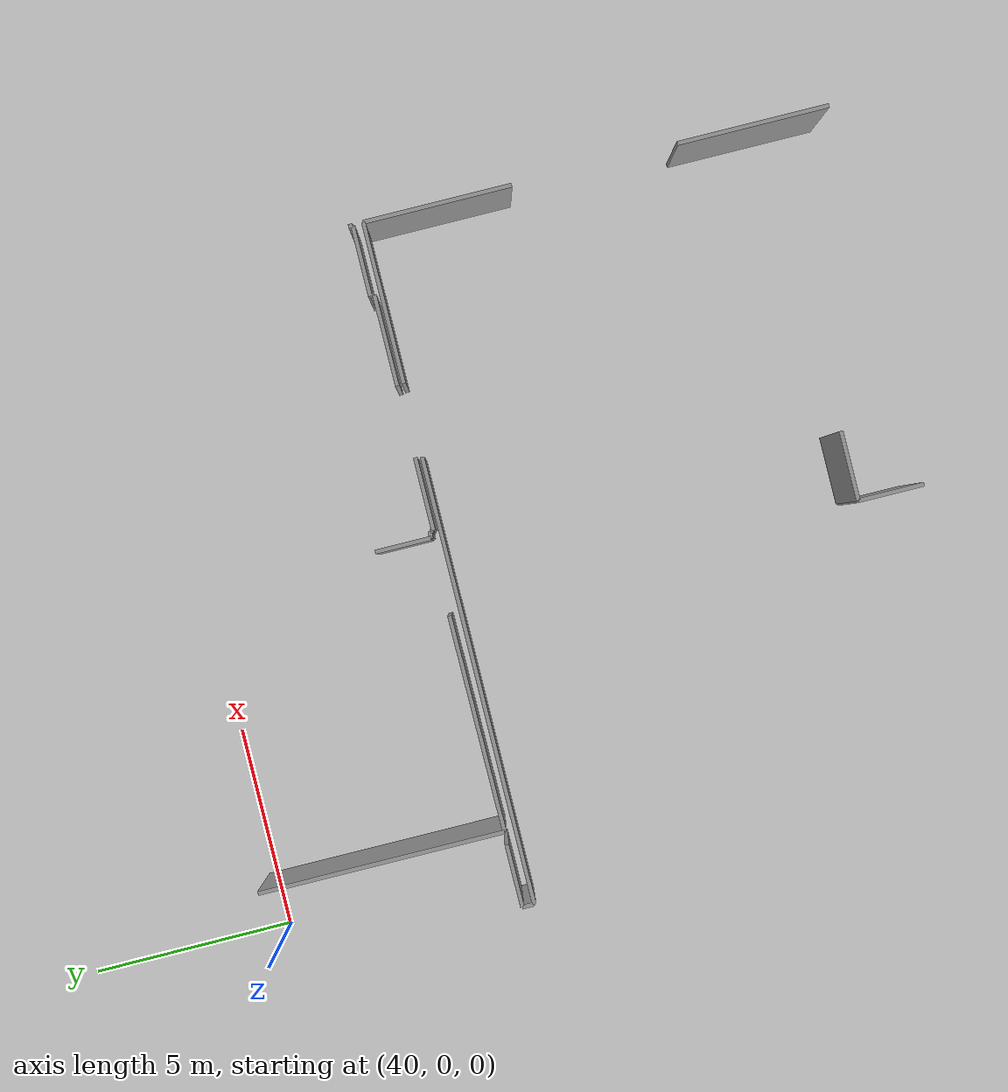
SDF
<sdf version="1.6">
 <world name="default">
  <model name="ground_plane">
   <static>1</static>
   <link name="link">
    <collision name="collision">
     <geometry><plane><normal>0 0 1</normal><size>100 100</size></plane></geometry>
     <surface><friction><ode><mu>100</mu><mu2>50</mu2></ode></friction></surface>
    </collision>
    <visual name="visual">
     <cast_shadows>0</cast_shadows>
     <geometry><plane><normal>0 0 1</normal><size>100 100</size></plane></geometry>
     <material>
      <script><uri>file://media/materials/scripts/gazebo.material</uri><name>Gazebo/Grey</name></script>
     </material>
    </visual>
   </link>
  </model>
  <model name="50057022">
   <static>1</static>
   <link name="Wall_550">
    <collision name="Wall_550_Collision">
     <geometry><box><size>1.52600455736 0.1 2.5</size></box></geometry>
     <pose>0.763002278678 0 1.25 0 0 0</pose>
    </collision>
    <visual name="Wall_550_Visual">
     <pose>0.763002278678 0 1.25 0 0 0</pose>
     <geometry><box><size>1.52600455736 0.1 2.5</size></box></geometry>
     <material>
      <script><uri>file://media/materials/scripts/gazebo.material</uri><name>Gazebo/Grey</name></script>
      <ambient>1 1 1 1</ambient>
     </material>
    </visual>
    <pose>97.5440210683 -29.6384024414 0 0 0 3.14159265359</pose>
   </link>
   <link name="Wall_551">
    <collision name="Wall_551_Collision">
     <geometry><box><size>0.289207075815 0.1 2.5</size></box></geometry>
     <pose>0.144603537907 0 1.25 0 0 0</pose>
    </collision>
    <visual name="Wall_551_Visual">
     <pose>0.144603537907 0 1.25 0 0 0</pose>
     <geometry><box><size>0.289207075815 0.1 2.5</size></box></geometry>
     <material>
      <script><uri>file://media/materials/scripts/gazebo.material</uri><name>Gazebo/Grey</name></script>
      <ambient>1 1 1 1</ambient>
     </material>
    </visual>
    <pose>96.0180165109 -29.6384024414 0 0 0 -1.57079632679</pose>
   </link>
   <link name="Wall_552">
    <collision name="Wall_552_Collision">
     <geometry><box><size>10.9803638281 0.1 2.5</size></box></geometry>
     <pose>5.49018191404 0 1.25 0 0 0</pose>
    </collision>
    <visual name="Wall_552_Visual">
     <pose>5.49018191404 0 1.25 0 0 0</pose>
     <geometry><box><size>10.9803638281 0.1 2.5</size></box></geometry>
     <material>
      <script><uri>file://media/materials/scripts/gazebo.material</uri><name>Gazebo/Grey</name></script>
      <ambient>1 1 1 1</ambient>
     </material>
    </visual>
    <pose>96.0180165109 -29.9276095172 0 0 0 0.0</pose>
   </link>
   <link name="Wall_553">
    <collision name="Wall_553_Collision">
     <geometry><box><size>3.95536934101 0.1 2.5</size></box></geometry>
     <pose>1.9776846705 0 1.25 0 0 0</pose>
    </collision>
    <visual name="Wall_553_Visual">
     <pose>1.9776846705 0 1.25 0 0 0</pose>
     <geometry><box><size>3.95536934101 0.1 2.5</size></box></geometry>
     <material>
      <script><uri>file://media/materials/scripts/gazebo.material</uri><name>Gazebo/Grey</name></script>
      <ambient>1 1 1 1</ambient>
     </material>
    </visual>
    <pose>108.809409749 -29.9276095172 0 0 0 0.0</pose>
   </link>
   <link name="Wall_554">
    <collision name="Wall_554_Collision">
     <geometry><box><size>3.64449074461 0.1 2.5</size></box></geometry>
     <pose>1.82224537231 0 1.25 0 0 0</pose>
    </collision>
    <visual name="Wall_554_Visual">
     <pose>1.82224537231 0 1.25 0 0 0</pose>
     <geometry><box><size>3.64449074461 0.1 2.5</size></box></geometry>
     <material>
      <script><uri>file://media/materials/scripts/gazebo.material</uri><name>Gazebo/Grey</name></script>
      <ambient>1 1 1 1</ambient>
     </material>
    </visual>
    <pose>112.76477909 -29.9276095172 0 0 0 -1.57079632679</pose>
   </link>
   <link name="Wall_555">
    <collision name="Wall_555_Collision">
     <geometry><box><size>3.72091136982 0.1 2.5</size></box></geometry>
     <pose>1.86045568491 0 1.25 0 0 0</pose>
    </collision>
    <visual name="Wall_555_Visual">
     <pose>1.86045568491 0 1.25 0 0 0</pose>
     <geometry><box><size>3.72091136982 0.1 2.5</size></box></geometry>
     <material>
      <script><uri>file://media/materials/scripts/gazebo.material</uri><name>Gazebo/Grey</name></script>
      <ambient>1 1 1 1</ambient>
     </material>
    </visual>
    <pose>112.76477909 -37.6449520565 0 0 0 -1.57079632679</pose>
   </link>
   <link name="Wall_558">
    <collision name="Wall_558_Collision">
     <geometry><box><size>1.70913524296 0.1 2.5</size></box></geometry>
     <pose>0.854567621481 0 1.25 0 0 0</pose>
    </collision>
    <visual name="Wall_558_Visual">
     <pose>0.854567621481 0 1.25 0 0 0</pose>
     <geometry><box><size>1.70913524296 0.1 2.5</size></box></geometry>
     <material>
      <script><uri>file://media/materials/scripts/gazebo.material</uri><name>Gazebo/Grey</name></script>
      <ambient>1 1 1 1</ambient>
     </material>
    </visual>
    <pose>105.172142844 -39.7568480738 0 0 0 3.14159265359</pose>
   </link>
   <link name="Wall_559">
    <collision name="Wall_559_Collision">
     <geometry><box><size>1.60901535256 0.1 2.5</size></box></geometry>
     <pose>0.804507676281 0 1.25 0 0 0</pose>
    </collision>
    <visual name="Wall_559_Visual">
     <pose>0.804507676281 0 1.25 0 0 0</pose>
     <geometry><box><size>1.60901535256 0.1 2.5</size></box></geometry>
     <material>
      <script><uri>file://media/materials/scripts/gazebo.material</uri><name>Gazebo/Grey</name></script>
      <ambient>1 1 1 1</ambient>
     </material>
    </visual>
    <pose>103.463007602 -39.7568480738 0 0 0 -1.57079632679</pose>
   </link>
   <link name="Wall_565">
    <collision name="Wall_565_Collision">
     <geometry><box><size>1.3687276156 0.1 2.5</size></box></geometry>
     <pose>0.6843638078 0 1.25 0 0 0</pose>
    </collision>
    <visual name="Wall_565_Visual">
     <pose>0.6843638078 0 1.25 0 0 0</pose>
     <geometry><box><size>1.3687276156 0.1 2.5</size></box></geometry>
     <material>
      <script><uri>file://media/materials/scripts/gazebo.material</uri><name>Gazebo/Grey</name></script>
      <ambient>1 1 1 1</ambient>
     </material>
    </visual>
    <pose>105.072022954 -29.6627353768 0 0 0 1.57079632679</pose>
   </link>
   <link name="Wall_571">
    <collision name="Wall_571_Collision">
     <geometry><box><size>0.101387230785 0.1 2.5</size></box></geometry>
     <pose>0.0506936153926 0 1.25 0 0 0</pose>
    </collision>
    <visual name="Wall_571_Visual">
     <pose>0.0506936153926 0 1.25 0 0 0</pose>
     <geometry><box><size>0.101387230785 0.1 2.5</size></box></geometry>
     <material>
      <script><uri>file://media/materials/scripts/gazebo.material</uri><name>Gazebo/Grey</name></script>
      <ambient>1 1 1 1</ambient>
     </material>
    </visual>
    <pose>112.752105686 -29.561348146 0 0 0 -1.57079632679</pose>
   </link>
   <link name="Wall_572">
    <collision name="Wall_572_Collision">
     <geometry><box><size>1.7362563272 0.1 2.5</size></box></geometry>
     <pose>0.868128163598 0 1.25 0 0 0</pose>
    </collision>
    <visual name="Wall_572_Visual">
     <pose>0.868128163598 0 1.25 0 0 0</pose>
     <geometry><box><size>1.7362563272 0.1 2.5</size></box></geometry>
     <material>
      <script><uri>file://media/materials/scripts/gazebo.material</uri><name>Gazebo/Grey</name></script>
      <ambient>1 1 1 1</ambient>
     </material>
    </visual>
    <pose>112.752105686 -29.6627353768 0 0 0 3.14159265359</pose>
   </link>
   <link name="Wall_573">
    <collision name="Wall_573_Collision">
     <geometry><box><size>0.101387230785 0.1 2.5</size></box></geometry>
     <pose>0.0506936153926 0 1.25 0 0 0</pose>
    </collision>
    <visual name="Wall_573_Visual">
     <pose>0.0506936153926 0 1.25 0 0 0</pose>
     <geometry><box><size>0.101387230785 0.1 2.5</size></box></geometry>
     <material>
      <script><uri>file://media/materials/scripts/gazebo.material</uri><name>Gazebo/Grey</name></script>
      <ambient>1 1 1 1</ambient>
     </material>
    </visual>
    <pose>111.015849359 -29.6627353768 0 0 0 -1.57079632679</pose>
   </link>
   <link name="Wall_574">
    <collision name="Wall_574_Collision">
     <geometry><box><size>2.23051907727 0.1 2.5</size></box></geometry>
     <pose>1.11525953864 0 1.25 0 0 0</pose>
    </collision>
    <visual name="Wall_574_Visual">
     <pose>1.11525953864 0 1.25 0 0 0</pose>
     <geometry><box><size>2.23051907727 0.1 2.5</size></box></geometry>
     <material>
      <script><uri>file://media/materials/scripts/gazebo.material</uri><name>Gazebo/Grey</name></script>
      <ambient>1 1 1 1</ambient>
     </material>
    </visual>
    <pose>111.015849359 -29.7641226076 0 0 0 3.14159265359</pose>
   </link>
   <link name="Wall_575">
    <collision name="Wall_575_Collision">
     <geometry><box><size>1.78694994259 0.1 2.5</size></box></geometry>
     <pose>0.893474971295 0 1.25 0 0 0</pose>
    </collision>
    <visual name="Wall_575_Visual">
     <pose>0.893474971295 0 1.25 0 0 0</pose>
     <geometry><box><size>1.78694994259 0.1 2.5</size></box></geometry>
     <material>
      <script><uri>file://media/materials/scripts/gazebo.material</uri><name>Gazebo/Grey</name></script>
      <ambient>1 1 1 1</ambient>
     </material>
    </visual>
    <pose>107.023727147 -29.7641226076 0 0 0 3.14159265359</pose>
   </link>
   <link name="Wall_576">
    <collision name="Wall_576_Collision">
     <geometry><box><size>0.0760404230889 0.1 2.5</size></box></geometry>
     <pose>0.0380202115445 0 1.25 0 0 0</pose>
    </collision>
    <visual name="Wall_576_Visual">
     <pose>0.0380202115445 0 1.25 0 0 0</pose>
     <geometry><box><size>0.0760404230889 0.1 2.5</size></box></geometry>
     <material>
      <script><uri>file://media/materials/scripts/gazebo.material</uri><name>Gazebo/Grey</name></script>
      <ambient>1 1 1 1</ambient>
     </material>
    </visual>
    <pose>105.236777204 -29.7641226076 0 0 0 1.57079632679</pose>
   </link>
   <link name="Wall_577">
    <collision name="Wall_577_Collision">
     <geometry><box><size>0.166692602001 0.1 2.5</size></box></geometry>
     <pose>0.0833463010007 0 1.25 0 0 0</pose>
    </collision>
    <visual name="Wall_577_Visual">
     <pose>0.0833463010007 0 1.25 0 0 0</pose>
     <geometry><box><size>0.166692602001 0.1 2.5</size></box></geometry>
     <material>
      <script><uri>file://media/materials/scripts/gazebo.material</uri><name>Gazebo/Grey</name></script>
      <ambient>1 1 1 1</ambient>
     </material>
    </visual>
    <pose>105.236777204 -29.6880821845 0 0 0 2.98894332519</pose>
   </link>
   <link name="Wall_578">
    <collision name="Wall_578_Collision">
     <geometry><box><size>6.05788703942 0.1 2.5</size></box></geometry>
     <pose>3.02894351971 0 1.25 0 0 0</pose>
    </collision>
    <visual name="Wall_578_Visual">
     <pose>3.02894351971 0 1.25 0 0 0</pose>
     <geometry><box><size>6.05788703942 0.1 2.5</size></box></geometry>
     <material>
      <script><uri>file://media/materials/scripts/gazebo.material</uri><name>Gazebo/Grey</name></script>
      <ambient>1 1 1 1</ambient>
     </material>
    </visual>
    <pose>97.8608561645 -29.6627353768 0 0 0 1.57079632679</pose>
   </link>
   <link name="Wall_582">
    <collision name="Wall_582_Collision">
     <geometry><box><size>5.30805750694 0.1 2.5</size></box></geometry>
     <pose>2.65402875347 0 1.25 0 0 0</pose>
    </collision>
    <visual name="Wall_582_Visual">
     <pose>2.65402875347 0 1.25 0 0 0</pose>
     <geometry><box><size>5.30805750694 0.1 2.5</size></box></geometry>
     <material>
      <script><uri>file://media/materials/scripts/gazebo.material</uri><name>Gazebo/Grey</name></script>
      <ambient>1 1 1 1</ambient>
     </material>
    </visual>
    <pose>103.168857898 -29.6384024414 0 0 0 -3.13700848686</pose>
   </link>
   <pose>-56.55 23.8342557037 0 0 0 0</pose>
  </model>
 </world>
</sdf>
